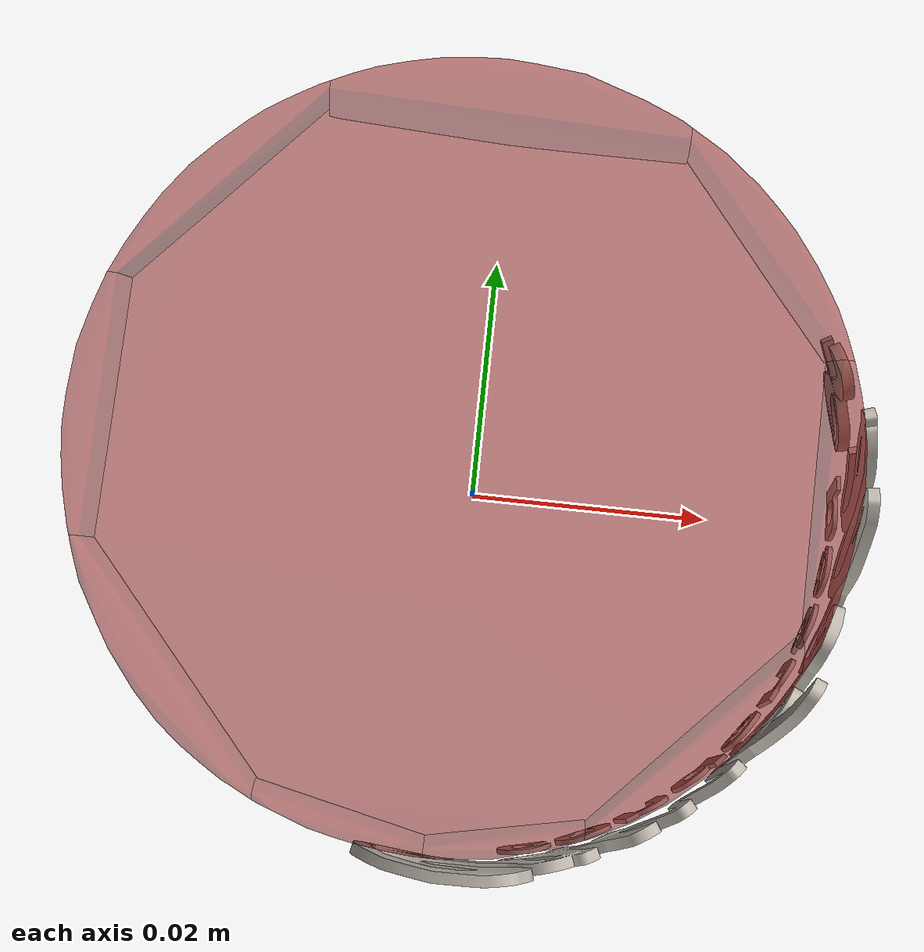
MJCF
<?xml version='1.0' encoding='utf-8'?>
<mujoco model="more_canned_food_9">
  <asset>
    <mesh file="visual/model_normalized_0.obj" name="model_normalized_0_vis" scale="0.08999999999999994 0.08999999999999994 0.08999999999999994" refquat="1.0 0.0 0.0 0.0" />
    <texture type="2d" name="image0" file="visual/image0.png" />
    <material name="tex_u1_v1.003" texture="image0" specular="0.5" shininess="0.0" />
    <mesh file="collision/collision_mesh_collision_0.obj" name="canned_collision_mesh_0" scale="0.08999999999999994 0.08999999999999994 0.08999999999999994" refquat="1.0 0.0 0.0 0.0" />
    <mesh file="collision/collision_mesh_collision_1.obj" name="canned_collision_mesh_1" scale="0.08999999999999994 0.08999999999999994 0.08999999999999994" refquat="1.0 0.0 0.0 0.0" />
    <mesh file="collision/collision_mesh_collision_2.obj" name="canned_collision_mesh_2" scale="0.08999999999999994 0.08999999999999994 0.08999999999999994" refquat="1.0 0.0 0.0 0.0" />
    <mesh file="collision/collision_mesh_collision_3.obj" name="canned_collision_mesh_3" scale="0.08999999999999994 0.08999999999999994 0.08999999999999994" refquat="1.0 0.0 0.0 0.0" />
    <mesh file="collision/collision_mesh_collision_4.obj" name="canned_collision_mesh_4" scale="0.08999999999999994 0.08999999999999994 0.08999999999999994" refquat="1.0 0.0 0.0 0.0" />
    <mesh file="collision/collision_mesh_collision_5.obj" name="canned_collision_mesh_5" scale="0.08999999999999994 0.08999999999999994 0.08999999999999994" refquat="1.0 0.0 0.0 0.0" />
    <mesh file="collision/collision_mesh_collision_6.obj" name="canned_collision_mesh_6" scale="0.08999999999999994 0.08999999999999994 0.08999999999999994" refquat="1.0 0.0 0.0 0.0" />
    <mesh file="collision/collision_mesh_collision_7.obj" name="canned_collision_mesh_7" scale="0.08999999999999994 0.08999999999999994 0.08999999999999994" refquat="1.0 0.0 0.0 0.0" />
    <mesh file="collision/collision_mesh_collision_8.obj" name="canned_collision_mesh_8" scale="0.08999999999999994 0.08999999999999994 0.08999999999999994" refquat="1.0 0.0 0.0 0.0" />
    <mesh file="collision/collision_mesh_collision_9.obj" name="canned_collision_mesh_9" scale="0.08999999999999994 0.08999999999999994 0.08999999999999994" refquat="1.0 0.0 0.0 0.0" />
    <mesh file="collision/collision_mesh_collision_10.obj" name="canned_collision_mesh_10" scale="0.08999999999999994 0.08999999999999994 0.08999999999999994" refquat="1.0 0.0 0.0 0.0" />
    <mesh file="collision/collision_mesh_collision_11.obj" name="canned_collision_mesh_11" scale="0.08999999999999994 0.08999999999999994 0.08999999999999994" refquat="1.0 0.0 0.0 0.0" />
    <mesh file="collision/collision_mesh_collision_12.obj" name="canned_collision_mesh_12" scale="0.08999999999999994 0.08999999999999994 0.08999999999999994" refquat="1.0 0.0 0.0 0.0" />
    <mesh file="collision/collision_mesh_collision_13.obj" name="canned_collision_mesh_13" scale="0.08999999999999994 0.08999999999999994 0.08999999999999994" refquat="1.0 0.0 0.0 0.0" />
    <mesh file="collision/collision_mesh_collision_14.obj" name="canned_collision_mesh_14" scale="0.08999999999999994 0.08999999999999994 0.08999999999999994" refquat="1.0 0.0 0.0 0.0" />
    <mesh file="collision/collision_mesh_collision_15.obj" name="canned_collision_mesh_15" scale="0.08999999999999994 0.08999999999999994 0.08999999999999994" refquat="1.0 0.0 0.0 0.0" />
  </asset>
  <default>
    <default class="region">
      <geom group="1" conaffinity="0" contype="0" rgba="0 1 0 0" mass="0" />
    </default>
    <default class="collision">
      <geom group="0" rgba="0.5 0 0 0.5" density="1338.139452245" />
    </default>
  </default>
  <worldbody>
    <body>
      <body name="object">
        <geom solimp="0.998 0.998 0.001" solref="0.001 1" density="133.813945225" friction="0.95 0.3 0.1" type="mesh" mesh="model_normalized_0_vis" conaffinity="0" contype="0" group="1" material="tex_u1_v1.003" />
        <geom class="region" name="reg_bbox" type="box" pos="0.0 -2.8709999999876314e-07 -2.7000000010768396e-09" size="0.029790686699999982 0.03045579929999998 0.04499999729999997" />
        <geom mesh="canned_collision_mesh_0" type="mesh" class="collision" />
        <geom mesh="canned_collision_mesh_1" type="mesh" class="collision" />
        <geom mesh="canned_collision_mesh_2" type="mesh" class="collision" />
        <geom mesh="canned_collision_mesh_3" type="mesh" class="collision" />
        <geom mesh="canned_collision_mesh_4" type="mesh" class="collision" />
        <geom mesh="canned_collision_mesh_5" type="mesh" class="collision" />
        <geom mesh="canned_collision_mesh_6" type="mesh" class="collision" />
        <geom mesh="canned_collision_mesh_7" type="mesh" class="collision" />
        <geom mesh="canned_collision_mesh_8" type="mesh" class="collision" />
        <geom mesh="canned_collision_mesh_9" type="mesh" class="collision" />
        <geom mesh="canned_collision_mesh_10" type="mesh" class="collision" />
        <geom mesh="canned_collision_mesh_11" type="mesh" class="collision" />
        <geom mesh="canned_collision_mesh_12" type="mesh" class="collision" />
        <geom mesh="canned_collision_mesh_13" type="mesh" class="collision" />
        <geom mesh="canned_collision_mesh_14" type="mesh" class="collision" />
        <geom mesh="canned_collision_mesh_15" type="mesh" class="collision" />
      </body>
    </body>
  </worldbody>
</mujoco>
